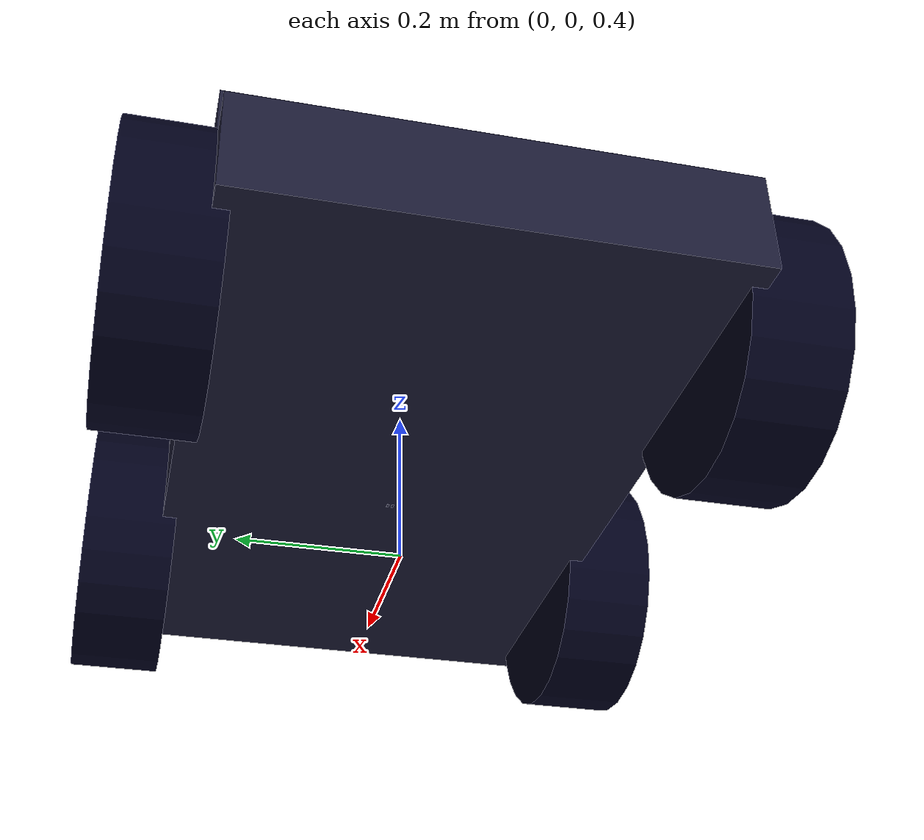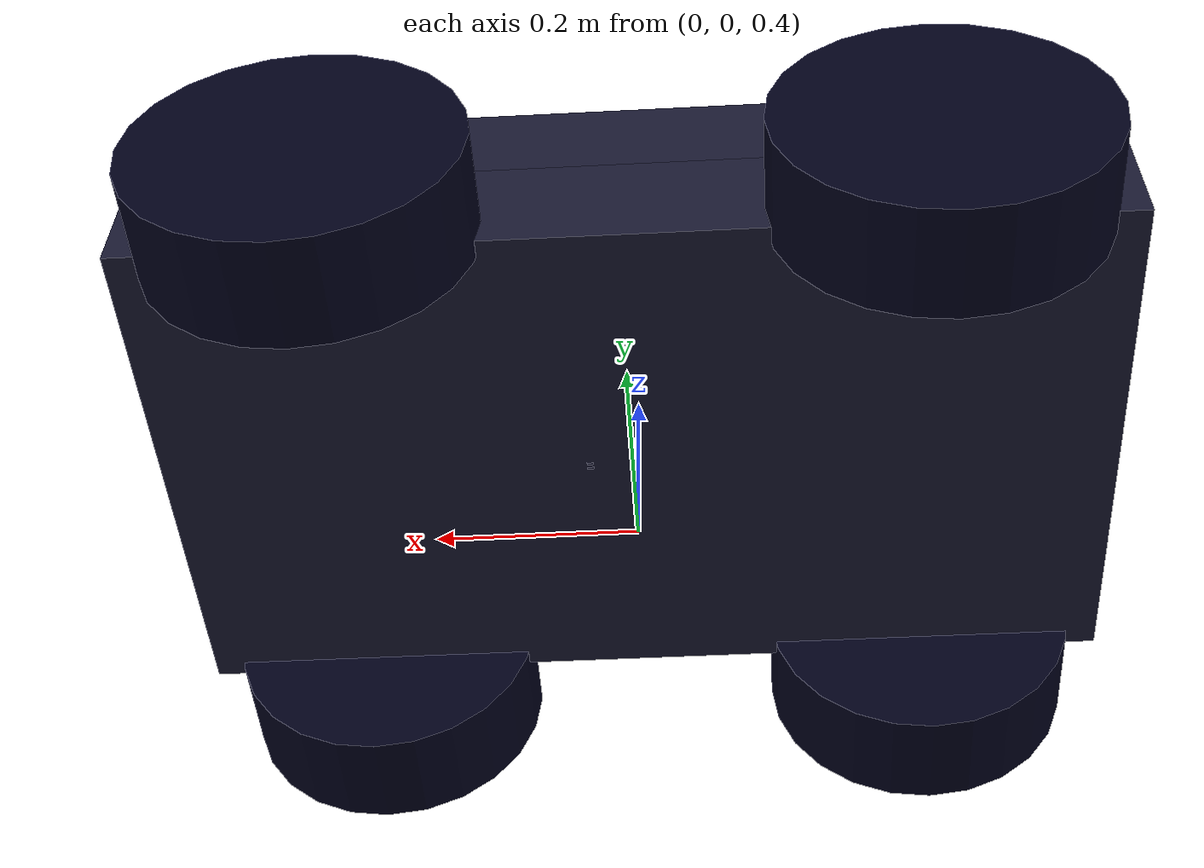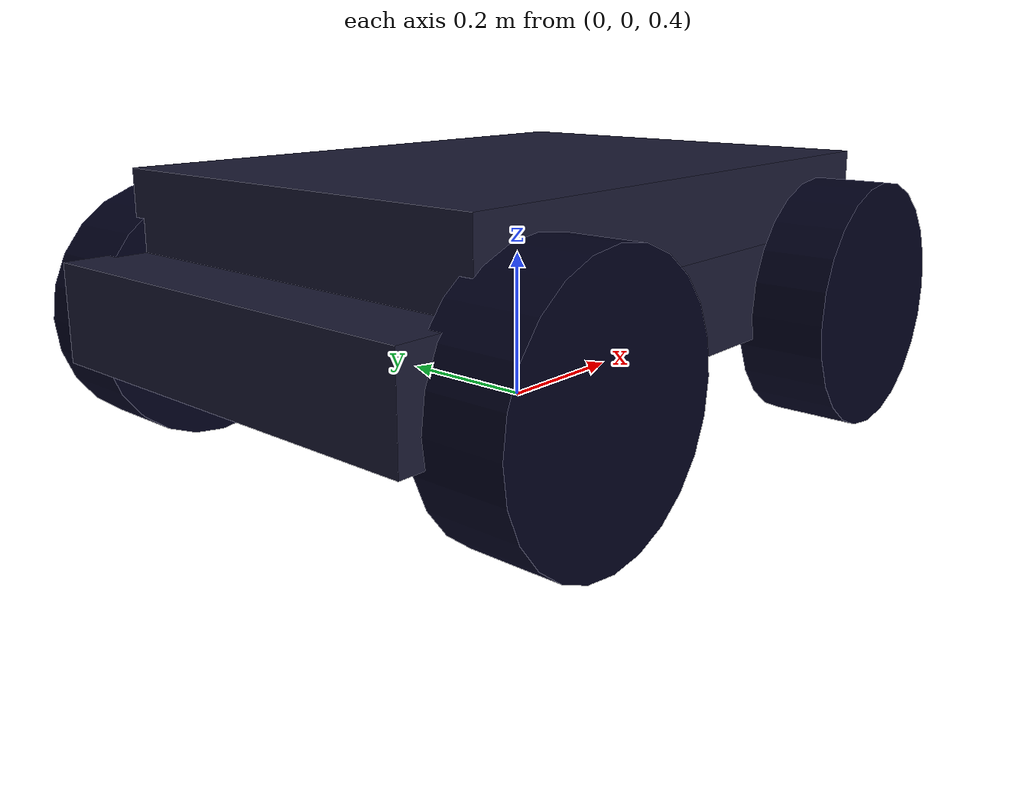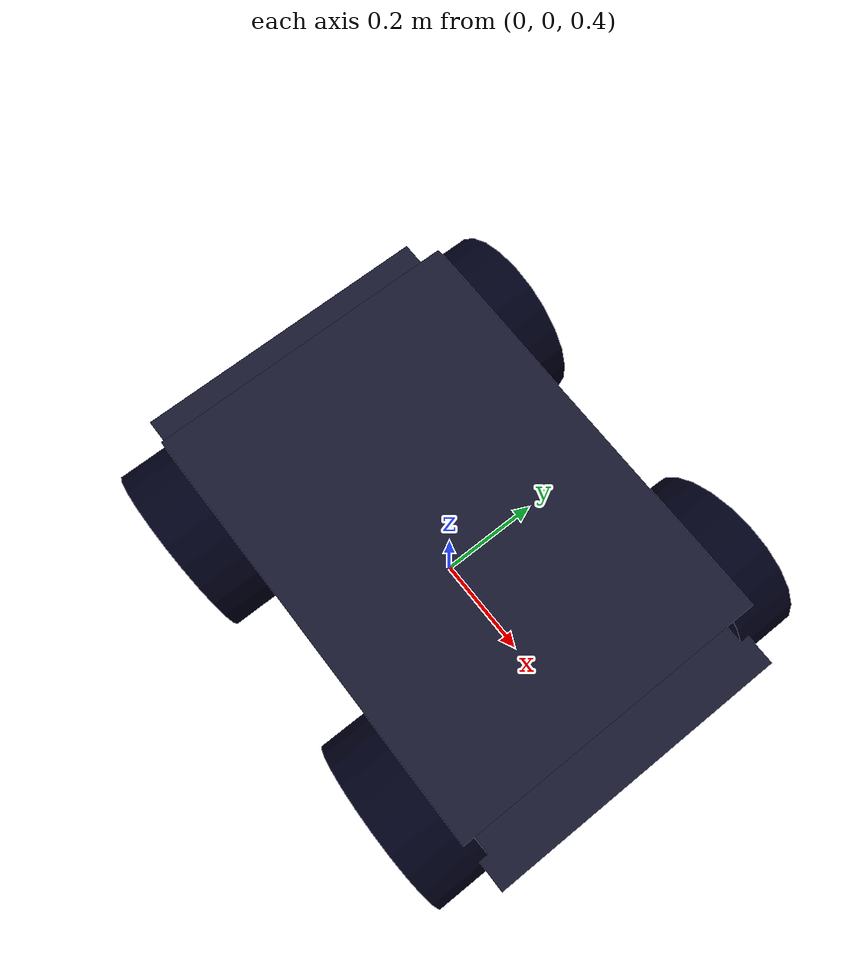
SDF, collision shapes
<sdf version='1.7'>
  <model name='husky'>
    <link name='base_link'>
      <inertial>
        <pose>-0.000649 -0.084998 0.561999 0 -0 0</pose>
        <mass>46.035</mass>
        <inertia>
          <ixx>0.602311</ixx>
          <ixy>-0.0236441</ixy>
          <ixz>-0.119697</ixz>
          <iyy>1.73871</iyy>
          <iyz>-0.00153873</iyz>
          <izz>2.02971</izz>
        </inertia>
      </inertial>
      <collision name='base_link_collision'>
        <pose>0 0 0.561875 0 -0 0</pose>
        <geometry>
          <box>
            <size>0.9874 0.5709 0.12375</size>
          </box>
        </geometry>
        <surface>
          <contact>
            <ode/>
          </contact>
          <friction>
            <ode/>
          </friction>
        </surface>
      </collision>
      <collision name='base_link_collision_1'>
        <pose>0 0 0.675625 0 -0 0</pose>
        <geometry>
          <box>
            <size>0.78992 0.5709 0.10375</size>
          </box>
        </geometry>
        <surface>
          <contact>
            <ode/>
          </contact>
          <friction>
            <ode/>
          </friction>
        </surface>
      </collision>
      <collision name='base_link_fixed_joint_lump__camera_link_collision_2'>
        <pose>0.047 0 0.5 0 -0 0</pose>
        <geometry>
          <mesh>
            <scale>0.0001 0.0001 0.0001</scale>
            <uri>meshes/camera.stl</uri>
          </mesh>
        </geometry>
        <surface>
          <contact>
            <ode/>
          </contact>
          <friction>
            <ode/>
          </friction>
        </surface>
      </collision>
      <visual name='base_link_visual'>
        <pose>-0.15 0.11 0.7 1.7 -0 1.57079</pose>
        <geometry>
          <mesh>
            <scale>0.002 0.002 0.002</scale>
            <uri>meshes/kae.stl</uri>
          </mesh>
        </geometry>
        <material> <!-- Wheel material -->
          <ambient>0.1 0.1 0.1 1</ambient>
          <diffuse>0.1 0.1 0.2 1</diffuse>
          <specular>0 0 0 0</specular>
          <emissive>0 0 0 1</emissive>
        </material> <!-- End wheel material -->
      </visual>
      <visual name='base_link_fixed_joint_lump__camera_link_visual_1'>
        <pose>0.397 0 0.7 0 -0 0</pose>
        <geometry>
          <mesh>
            <scale>0.0001 0.0001 0.0001</scale>
            <uri>meshes/camera.stl</uri>
          </mesh>
        </geometry>
        <material> <!-- Wheel material -->
          <ambient>0.8 0 0.2 1</ambient>
          <diffuse>0.8 0.0 0.0 1</diffuse>
          <specular>0 0 0 0</specular>
          <emissive>0 0 0 1</emissive>
        </material> <!-- End wheel material -->

      </visual>
      <sensor name="camera" type="camera">
          <camera>
            <horizontal_fov>1.047</horizontal_fov>
            <image>
              <width>1920</width>
              <height>1080</height>
            </image>
            <clip>
              <near>0.1</near>
              <far>100</far>
            </clip>
          </camera>
          <always_on>1</always_on>
          <update_rate>30</update_rate>
          <visualize>true</visualize>
          <topic>camera</topic>
        </sensor>
    </link>
    <joint name='front_left_wheel' type='revolute'>
      <pose relative_to='base_link'>0.3 0.325 0.53282 0 -0 0</pose>
      <parent>base_link</parent>
      <child>front_left_wheel_link</child>
      <axis>
        <xyz>0 1 0</xyz>
        <limit>
          <lower>-1e+16</lower>
          <upper>1e+16</upper>
        </limit>
        <dynamics>
          <spring_reference>0</spring_reference>
          <spring_stiffness>0</spring_stiffness>
        </dynamics>
      </axis>
    </joint>
    <link name='front_left_wheel_link'>
      <pose relative_to='front_left_wheel'>0 0 0 0 -0 0</pose>
      <inertial>
        <pose>0 0 0 0 -0 0</pose>
        <mass>2.637</mass>
        <inertia>
          <ixx>0.02467</ixx>
          <ixy>0</ixy>
          <ixz>0</ixz>
          <iyy>0.04411</iyy>
          <iyz>0</iyz>
          <izz>0.02467</izz>
        </inertia>
      </inertial>
      <collision name='front_left_wheel_link_collision'>
        <pose>0 0 0 1.57079 -0 0</pose>
        <geometry>
          <cylinder>
            <length>0.1143</length>
            <radius>0.1651</radius>
          </cylinder>
        </geometry>
      </collision>
      <visual name='front_left_wheel_link_visual'>
        <pose>0 0 0 0 -0 0</pose>
        <geometry>
          <mesh>
            <scale>0.8 0.8 0.8</scale>
            <uri>meshes/wheel.stl</uri>
          </mesh>
        </geometry>
        <material> <!-- Wheel material -->
          <ambient>0 0 0.5 1</ambient>
          <diffuse>0 0 0.1 1</diffuse>
          <specular>0 0 0 0</specular>
          <emissive>0 0 0 1</emissive>
        </material> <!-- End wheel material -->
      </visual>
    </link>
    <joint name='front_right_wheel' type='revolute'>
      <pose relative_to='base_link'>0.3 -0.325 0.53282 0 -0 0</pose>
      <parent>base_link</parent>
      <child>front_right_wheel_link</child>
      <axis>
        <xyz>0 1 0</xyz>
        <limit>
          <lower>-1e+16</lower>
          <upper>1e+16</upper>
        </limit>
        <dynamics>
          <spring_reference>0</spring_reference>
          <spring_stiffness>0</spring_stiffness>
        </dynamics>
      </axis>
    </joint>
    <link name='front_right_wheel_link'>
      <pose relative_to='front_right_wheel'>0 0 0 0 -0 0</pose>
      <inertial>
        <pose>0 0 0 0 -0 0</pose>
        <mass>2.637</mass>
        <inertia>
          <ixx>0.02467</ixx>
          <ixy>0</ixy>
          <ixz>0</ixz>
          <iyy>0.04411</iyy>
          <iyz>0</iyz>
          <izz>0.02467</izz>
        </inertia>
      </inertial>
      <collision name='front_right_wheel_link_collision'>
        <pose>0 0 0 1.57079 -0 0</pose>
        <geometry>
          <cylinder>
            <length>0.1143</length>
            <radius>0.1651</radius>
          </cylinder>
        </geometry>
      </collision>
      <visual name='front_right_wheel_link_visual'>
        <pose>0 0 0 0 -0 0</pose>
        <geometry>
          <mesh>
            <scale>0.8 0.8 0.8</scale>
            <uri>meshes/wheel.stl</uri>
          </mesh>
        </geometry>
        <material> <!-- Wheel material -->
          <ambient>0 0 0.5 1</ambient>
          <diffuse>0 0 0.1 1</diffuse>
          <specular>0 0 0 0</specular>
          <emissive>0 0 0 1</emissive>
        </material> <!-- End wheel material -->
      </visual>
    </link>
    <joint name='rear_left_wheel' type='revolute'>
      <pose relative_to='base_link'>-0.3 0.325 0.53282 0 -0 0</pose>
      <parent>base_link</parent>
      <child>rear_left_wheel_link</child>
      <axis>
        <xyz>0 1 0</xyz>
        <limit>
          <lower>-1e+16</lower>
          <upper>1e+16</upper>
        </limit>
        <dynamics>
          <spring_reference>0</spring_reference>
          <spring_stiffness>0</spring_stiffness>
        </dynamics>
      </axis>
    </joint>
    <link name='rear_left_wheel_link'>
      <pose relative_to='rear_left_wheel'>0 0 0 0 -0 0</pose>
      <inertial>
        <pose>0 0 0 0 -0 0</pose>
        <mass>2.637</mass>
        <inertia>
          <ixx>0.02467</ixx>
          <ixy>0</ixy>
          <ixz>0</ixz>
          <iyy>0.04411</iyy>
          <iyz>0</iyz>
          <izz>0.02467</izz>
        </inertia>
      </inertial>
      <collision name='rear_left_wheel_link_collision'>
        <pose>0 0 0 1.57079 -0 0</pose>
        <geometry>
          <cylinder>
            <length>0.1143</length>
            <radius>0.1651</radius>
          </cylinder>
        </geometry>
      </collision>
      <visual name='rear_left_wheel_link_visual'>
        <pose>0 0 0 0 -0 0</pose>
        <geometry>
          <mesh>
            <scale>0.8 0.8 0.8</scale>
            <uri>meshes/wheel.stl</uri>
          </mesh>
        </geometry>
        <material> <!-- Wheel material -->
          <ambient>0 0 0.5 1</ambient>
          <diffuse>0 0 0.1 1</diffuse>
          <specular>0 0 0 0</specular>
          <emissive>0 0 0 1</emissive>
        </material> <!-- End wheel material -->
      </visual>
    </link>
    <joint name='rear_right_wheel' type='revolute'>
      <pose relative_to='base_link'>-0.3 -0.325 0.53282 0 -0 0</pose>
      <parent>base_link</parent>
      <child>rear_right_wheel_link</child>
      <axis>
        <xyz>0 1 0</xyz>
        <limit>
          <lower>-1e+16</lower>
          <upper>1e+16</upper>
        </limit>
        <dynamics>
          <spring_reference>0</spring_reference>
          <spring_stiffness>0</spring_stiffness>
        </dynamics>
      </axis>
    </joint>
    <link name='rear_right_wheel_link'>
      <pose relative_to='rear_right_wheel'>0 0 0 0 -0 0</pose>
      <inertial>
        <pose>0 0 0 0 -0 0</pose>
        <mass>2.637</mass>
        <inertia>
          <ixx>0.02467</ixx>
          <ixy>0</ixy>
          <ixz>0</ixz>
          <iyy>0.04411</iyy>
          <iyz>0</iyz>
          <izz>0.02467</izz>
        </inertia>
      </inertial>
      <collision name='rear_right_wheel_link_collision'>
        <pose>0 0 0 1.57079 -0 0</pose>
        <geometry>
          <cylinder>
            <length>0.1143</length>
            <radius>0.1651</radius>
          </cylinder>
        </geometry>
      </collision>
      <visual name='rear_right_wheel_link_visual'>
        <pose>0 0 0 0 -0 0</pose>
        <geometry>
          <mesh>
            <scale>0.8 0.8 0.8</scale>
            <uri>meshes/wheel.stl</uri>
          </mesh>
        </geometry>
        <material> <!-- Wheel material -->
          <ambient>0 0 0.5 1</ambient>
          <diffuse>0 0 0.1 1</diffuse>
          <specular>0 0 0 0</specular>
          <emissive>0 0 0 1</emissive>
        </material> <!-- End wheel material -->
      </visual>
    </link>
    <static>0</static>
    <plugin
        filename="ignition-gazebo-diff-drive-system"
        name="ignition::gazebo::systems::DiffDrive">
        <left_joint>front_left_wheel</left_joint>
        <right_joint>front_right_wheel</right_joint>
        <wheel_separation>1.25</wheel_separation>
        <wheel_radius>0.3</wheel_radius>
        <topic>cmd_vel</topic>
      </plugin>
  </model>
</sdf>
